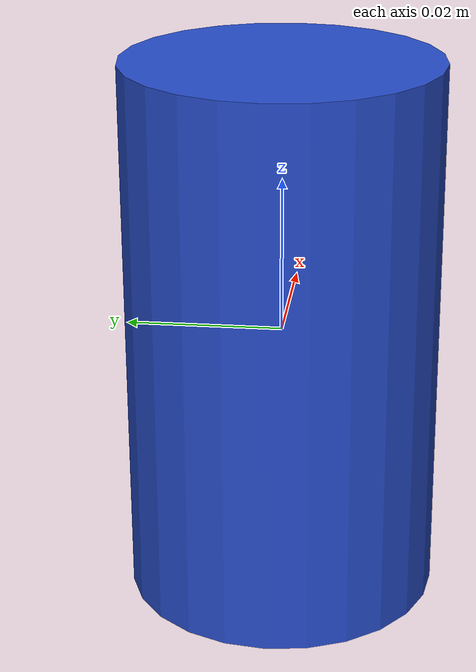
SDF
<?xml version="1.0" ?>
<sdf version="1.6">
  <model name="blue_cylinder">
    <static>false</static> <!-- Set to true to fix position, subject to gravity -->

    <link name="link">
      <collision name="collision">
        <geometry>
          <cylinder>
            <radius>0.02</radius> <!-- Radius of the cylinder -->
            <length>0.07</length> <!-- Height of the cylinder -->
          </cylinder>
        </geometry>
      </collision>
      <visual name="visual">
        <geometry>
          <cylinder>
            <radius>0.02</radius> <!-- Radius of the cylinder -->
            <length>0.07</length> <!-- Height of the cylinder -->
          </cylinder>
        </geometry>
        <material>
          <script>
            <uri>file://media/materials/scripts/gazebo.material</uri>
            <name>Gazebo/Blue</name> <!-- Use the correct material name for black -->
          </script>
        </material>
      </visual>
    </link>

    <!-- Set mass and inertia for the cylinder -->
    <inertial>
      <mass>0.1</mass>
      <inertia>
        <ixx>0.00005</ixx>
        <iyy>0.00005</iyy>
        <izz>0.0001</izz>
        <ixy>0</ixy>
        <ixz>0</ixz>
        <iyz>0</iyz>
      </inertia>
    </inertial>
  </model>
</sdf>
